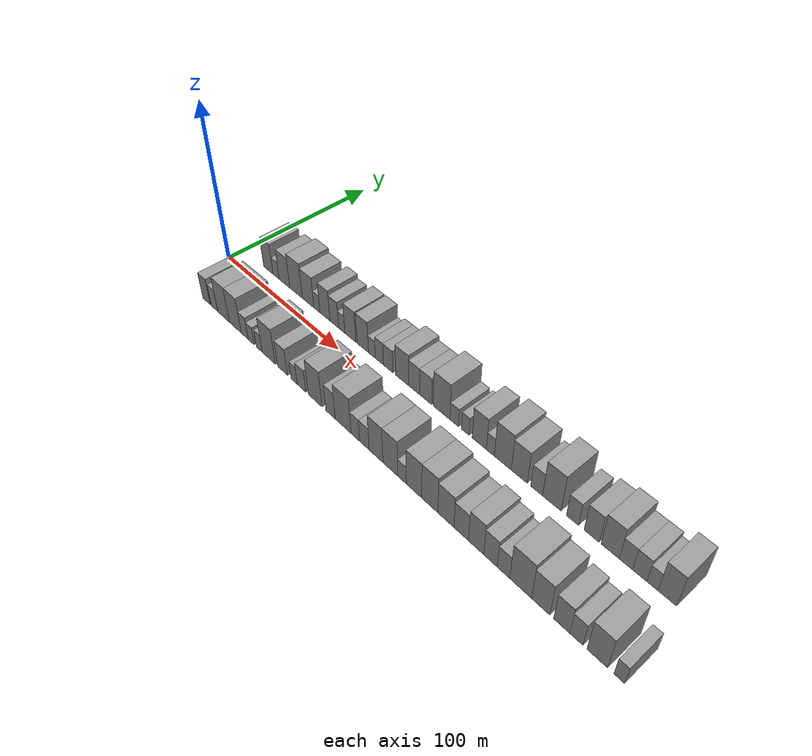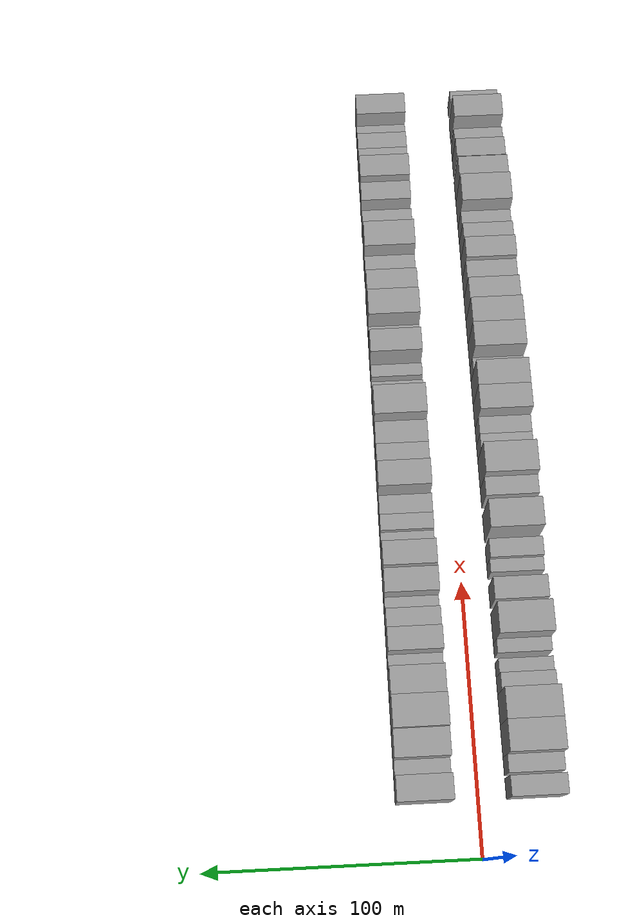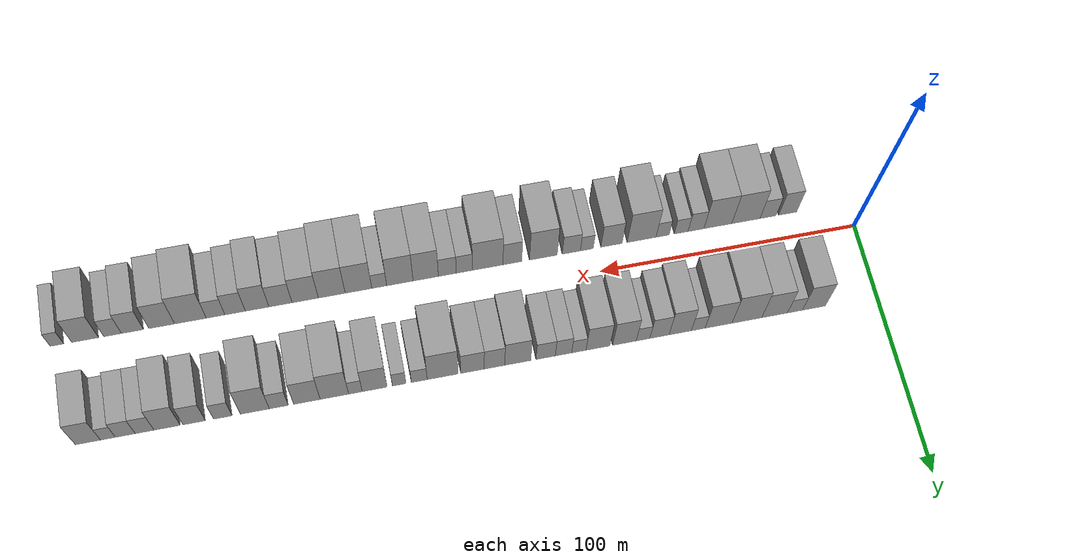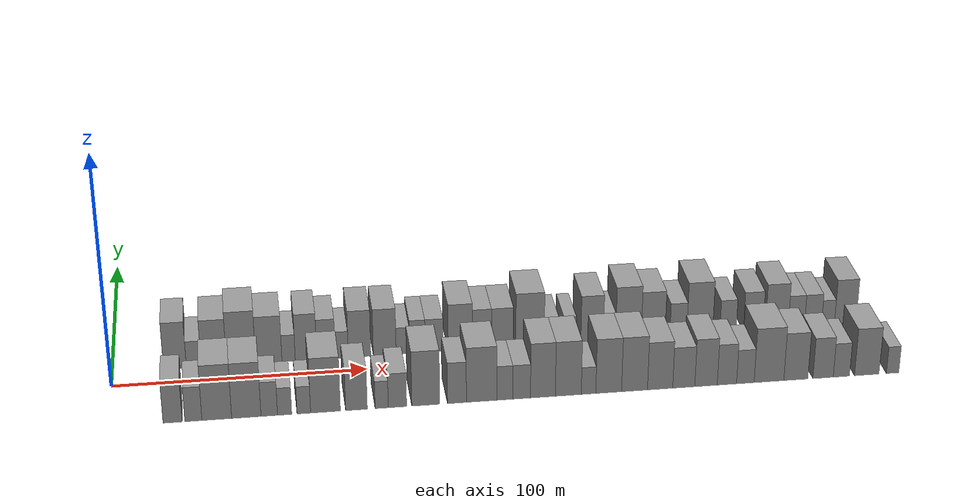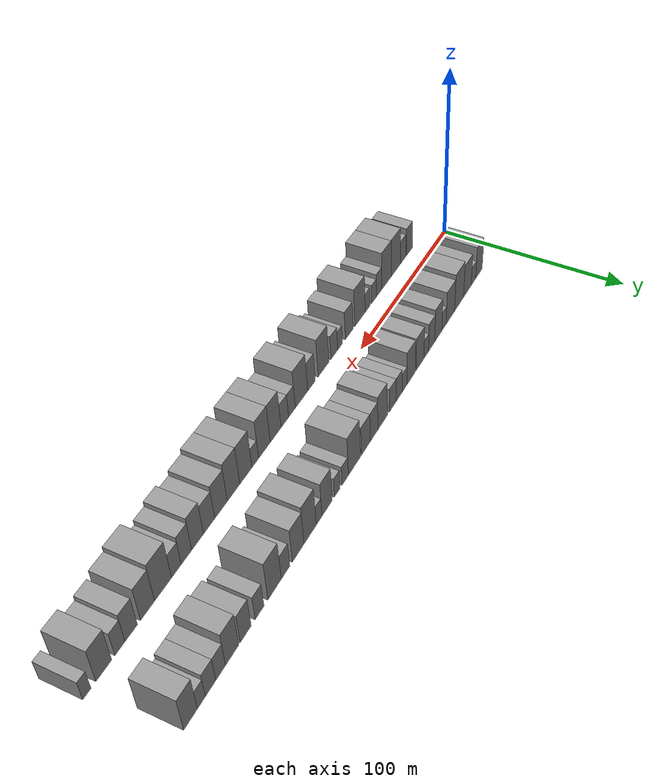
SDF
<sdf version="1.6">
 <world name="default">
  <scene>
   <sky><clouds><speed>12</speed></clouds></sky>
   <ambient>0.4 0.4 0.4 1</ambient>
   <background>0.7 0.7 0.7 1</background>
   <shadows>1</shadows>
  </scene>
  <gravity>0 0 -9.8066</gravity>
  <magnetic_field>6e-06 2.3e-05 -4.2e-05</magnetic_field>
  <physics default="0" name="default_physics" type="ode">
   <ode>
    <solver>
     <type>quick</type>
     <iters>10</iters>
     <sor>1.0</sor>
     <use_dynamic_moi_rescaling>0</use_dynamic_moi_rescaling>
    </solver>
    <constraints>
     <cfm>0</cfm>
     <erp>0.2</erp>
     <contact_max_correcting_vel>100</contact_max_correcting_vel>
     <contact_surface_layer>0.001</contact_surface_layer>
    </constraints>
   </ode>
   <max_step_size>0.004</max_step_size>
   <real_time_factor>1</real_time_factor>
   <real_time_update_rate>250</real_time_update_rate>
  </physics>
  <light name="sun" type="directional">
   <pose>0 0 10 0 0 0</pose>
   <diffuse>0.8 0.8 0.8 1</diffuse>
   <specular>0.2 0.2 0.2 1</specular>
   <attenuation>
    <range>1000</range>
    <constant>0.9</constant>
    <linear>0.01</linear>
    <quadratic>0.001</quadratic>
   </attenuation>
   <direction>-0.5 0.1 -0.9</direction>
  </light>
  <model name="building_1">
   <static>1</static>
   <pose>24.4871 20.0000 0 0.000000 0.000000 1.570796</pose>
   <link name="link">
    <pose>0 0 10.50 0 0 0</pose>
    <collision name="collision"><geometry><box><size>20.0000 8.9742 21.0000</size></box></geometry></collision>
    <visual name="visual">
     <cast_shadows>0</cast_shadows>
     <geometry><box><size>20.0000 8.9742 21.0000</size></box></geometry>
     <material>
      <script>
       <uri>model://grey_wall/materials/scripts</uri>
       <uri>model://grey_wall/materials/textures</uri>
       <name>vrc/grey_wall</name>
      </script>
     </material>
    </visual>
   </link>
  </model>
  <model name="building_2">
   <static>1</static>
   <pose>31.8893 20.0000 0 0.000000 0.000000 1.570796</pose>
   <link name="link">
    <pose>0 0 6.00 0 0 0</pose>
    <collision name="collision"><geometry><box><size>20.0000 5.8302 12.0000</size></box></geometry></collision>
    <visual name="visual">
     <cast_shadows>0</cast_shadows>
     <geometry><box><size>20.0000 5.8302 12.0000</size></box></geometry>
     <material>
      <script>
       <uri>model://grey_wall/materials/scripts</uri>
       <uri>model://grey_wall/materials/textures</uri>
       <name>vrc/grey_wall</name>
      </script>
     </material>
    </visual>
   </link>
  </model>
  <model name="building_3">
   <static>1</static>
   <pose>39.8006 20.0000 0 0.000000 0.000000 1.570796</pose>
   <link name="link">
    <pose>0 0 10.50 0 0 0</pose>
    <collision name="collision"><geometry><box><size>20.0000 9.9923 21.0000</size></box></geometry></collision>
    <visual name="visual">
     <cast_shadows>0</cast_shadows>
     <geometry><box><size>20.0000 9.9923 21.0000</size></box></geometry>
     <material>
      <script>
       <uri>model://grey_wall/materials/scripts</uri>
       <uri>model://grey_wall/materials/textures</uri>
       <name>vrc/grey_wall</name>
      </script>
     </material>
    </visual>
   </link>
  </model>
  <model name="building_4">
   <static>1</static>
   <pose>50.5695 20.0000 0 0.000000 0.000000 1.570796</pose>
   <link name="link">
    <pose>0 0 12.00 0 0 0</pose>
    <collision name="collision"><geometry><box><size>20.0000 11.5457 24.0000</size></box></geometry></collision>
    <visual name="visual">
     <cast_shadows>0</cast_shadows>
     <geometry><box><size>20.0000 11.5457 24.0000</size></box></geometry>
     <material>
      <script>
       <uri>model://grey_wall/materials/scripts</uri>
       <uri>model://grey_wall/materials/textures</uri>
       <name>vrc/grey_wall</name>
      </script>
     </material>
    </visual>
   </link>
  </model>
  <model name="building_5">
   <static>1</static>
   <pose>61.5440 20.0000 0 0.000000 0.000000 1.570796</pose>
   <link name="link">
    <pose>0 0 10.50 0 0 0</pose>
    <collision name="collision"><geometry><box><size>20.0000 10.4033 21.0000</size></box></geometry></collision>
    <visual name="visual">
     <cast_shadows>0</cast_shadows>
     <geometry><box><size>20.0000 10.4033 21.0000</size></box></geometry>
     <material>
      <script>
       <uri>model://grey_wall/materials/scripts</uri>
       <uri>model://grey_wall/materials/textures</uri>
       <name>vrc/grey_wall</name>
      </script>
     </material>
    </visual>
   </link>
  </model>
  <model name="building_6">
   <static>1</static>
   <pose>69.3928 20.0000 0 0.000000 0.000000 1.570796</pose>
   <link name="link">
    <pose>0 0 6.00 0 0 0</pose>
    <collision name="collision"><geometry><box><size>20.0000 5.2942 12.0000</size></box></geometry></collision>
    <visual name="visual">
     <cast_shadows>0</cast_shadows>
     <geometry><box><size>20.0000 5.2942 12.0000</size></box></geometry>
     <material>
      <script>
       <uri>model://grey_wall/materials/scripts</uri>
       <uri>model://grey_wall/materials/textures</uri>
       <name>vrc/grey_wall</name>
      </script>
     </material>
    </visual>
   </link>
  </model>
  <model name="building_7">
   <static>1</static>
   <pose>76.3255 20.0000 0 0.000000 0.000000 1.570796</pose>
   <link name="link">
    <pose>0 0 10.50 0 0 0</pose>
    <collision name="collision"><geometry><box><size>20.0000 8.5712 21.0000</size></box></geometry></collision>
    <visual name="visual">
     <cast_shadows>0</cast_shadows>
     <geometry><box><size>20.0000 8.5712 21.0000</size></box></geometry>
     <material>
      <script>
       <uri>model://grey_wall/materials/scripts</uri>
       <uri>model://grey_wall/materials/textures</uri>
       <name>vrc/grey_wall</name>
      </script>
     </material>
    </visual>
   </link>
  </model>
  <model name="building_8">
   <static>1</static>
   <pose>84.2975 20.0000 0 0.000000 0.000000 1.570796</pose>
   <link name="link">
    <pose>0 0 9.00 0 0 0</pose>
    <collision name="collision"><geometry><box><size>20.0000 7.3727 18.0000</size></box></geometry></collision>
    <visual name="visual">
     <cast_shadows>0</cast_shadows>
     <geometry><box><size>20.0000 7.3727 18.0000</size></box></geometry>
     <material>
      <script>
       <uri>model://grey_wall/materials/scripts</uri>
       <uri>model://grey_wall/materials/textures</uri>
       <name>vrc/grey_wall</name>
      </script>
     </material>
    </visual>
   </link>
  </model>
  <model name="building_9">
   <static>1</static>
   <pose>90.5902 20.0000 0 0.000000 0.000000 1.570796</pose>
   <link name="link">
    <pose>0 0 6.00 0 0 0</pose>
    <collision name="collision"><geometry><box><size>20.0000 5.2127 12.0000</size></box></geometry></collision>
    <visual name="visual">
     <cast_shadows>0</cast_shadows>
     <geometry><box><size>20.0000 5.2127 12.0000</size></box></geometry>
     <material>
      <script>
       <uri>model://grey_wall/materials/scripts</uri>
       <uri>model://grey_wall/materials/textures</uri>
       <name>vrc/grey_wall</name>
      </script>
     </material>
    </visual>
   </link>
  </model>
  <model name="building_10">
   <static>1</static>
   <pose>97.7209 20.0000 0 0.000000 0.000000 1.570796</pose>
   <link name="link">
    <pose>0 0 10.50 0 0 0</pose>
    <collision name="collision"><geometry><box><size>20.0000 9.0488 21.0000</size></box></geometry></collision>
    <visual name="visual">
     <cast_shadows>0</cast_shadows>
     <geometry><box><size>20.0000 9.0488 21.0000</size></box></geometry>
     <material>
      <script>
       <uri>model://grey_wall/materials/scripts</uri>
       <uri>model://grey_wall/materials/textures</uri>
       <name>vrc/grey_wall</name>
      </script>
     </material>
    </visual>
   </link>
  </model>
  <model name="building_11">
   <static>1</static>
   <pose>107.8234 20.0000 0 0.000000 0.000000 1.570796</pose>
   <link name="link">
    <pose>0 0 10.50 0 0 0</pose>
    <collision name="collision"><geometry><box><size>20.0000 9.1562 21.0000</size></box></geometry></collision>
    <visual name="visual">
     <cast_shadows>0</cast_shadows>
     <geometry><box><size>20.0000 9.1562 21.0000</size></box></geometry>
     <material>
      <script>
       <uri>model://grey_wall/materials/scripts</uri>
       <uri>model://grey_wall/materials/textures</uri>
       <name>vrc/grey_wall</name>
      </script>
     </material>
    </visual>
   </link>
  </model>
  <model name="building_12">
   <static>1</static>
   <pose>115.1176 20.0000 0 0.000000 0.000000 1.570796</pose>
   <link name="link">
    <pose>0 0 6.00 0 0 0</pose>
    <collision name="collision"><geometry><box><size>20.0000 5.4322 12.0000</size></box></geometry></collision>
    <visual name="visual">
     <cast_shadows>0</cast_shadows>
     <geometry><box><size>20.0000 5.4322 12.0000</size></box></geometry>
     <material>
      <script>
       <uri>model://grey_wall/materials/scripts</uri>
       <uri>model://grey_wall/materials/textures</uri>
       <name>vrc/grey_wall</name>
      </script>
     </material>
    </visual>
   </link>
  </model>
  <model name="building_13">
   <static>1</static>
   <pose>120.9533 20.0000 0 0.000000 0.000000 1.570796</pose>
   <link name="link">
    <pose>0 0 7.50 0 0 0</pose>
    <collision name="collision"><geometry><box><size>20.0000 6.2392 15.0000</size></box></geometry></collision>
    <visual name="visual">
     <cast_shadows>0</cast_shadows>
     <geometry><box><size>20.0000 6.2392 15.0000</size></box></geometry>
     <material>
      <script>
       <uri>model://grey_wall/materials/scripts</uri>
       <uri>model://grey_wall/materials/textures</uri>
       <name>vrc/grey_wall</name>
      </script>
     </material>
    </visual>
   </link>
  </model>
  <model name="building_14">
   <static>1</static>
   <pose>127.7393 20.0000 0 0.000000 0.000000 1.570796</pose>
   <link name="link">
    <pose>0 0 7.50 0 0 0</pose>
    <collision name="collision"><geometry><box><size>20.0000 7.3328 15.0000</size></box></geometry></collision>
    <visual name="visual">
     <cast_shadows>0</cast_shadows>
     <geometry><box><size>20.0000 7.3328 15.0000</size></box></geometry>
     <material>
      <script>
       <uri>model://grey_wall/materials/scripts</uri>
       <uri>model://grey_wall/materials/textures</uri>
       <name>vrc/grey_wall</name>
      </script>
     </material>
    </visual>
   </link>
  </model>
  <model name="building_15">
   <static>1</static>
   <pose>138.3168 20.0000 0 0.000000 0.000000 1.570796</pose>
   <link name="link">
    <pose>0 0 10.50 0 0 0</pose>
    <collision name="collision"><geometry><box><size>20.0000 9.8221 21.0000</size></box></geometry></collision>
    <visual name="visual">
     <cast_shadows>0</cast_shadows>
     <geometry><box><size>20.0000 9.8221 21.0000</size></box></geometry>
     <material>
      <script>
       <uri>model://grey_wall/materials/scripts</uri>
       <uri>model://grey_wall/materials/textures</uri>
       <name>vrc/grey_wall</name>
      </script>
     </material>
    </visual>
   </link>
  </model>
  <model name="building_16">
   <static>1</static>
   <pose>147.0808 20.0000 0 0.000000 0.000000 1.570796</pose>
   <link name="link">
    <pose>0 0 9.00 0 0 0</pose>
    <collision name="collision"><geometry><box><size>20.0000 7.7059 18.0000</size></box></geometry></collision>
    <visual name="visual">
     <cast_shadows>0</cast_shadows>
     <geometry><box><size>20.0000 7.7059 18.0000</size></box></geometry>
     <material>
      <script>
       <uri>model://grey_wall/materials/scripts</uri>
       <uri>model://grey_wall/materials/textures</uri>
       <name>vrc/grey_wall</name>
      </script>
     </material>
    </visual>
   </link>
  </model>
  <model name="building_17">
   <static>1</static>
   <pose>155.3812 20.0000 0 0.000000 0.000000 1.570796</pose>
   <link name="link">
    <pose>0 0 9.00 0 0 0</pose>
    <collision name="collision"><geometry><box><size>20.0000 8.8951 18.0000</size></box></geometry></collision>
    <visual name="visual">
     <cast_shadows>0</cast_shadows>
     <geometry><box><size>20.0000 8.8951 18.0000</size></box></geometry>
     <material>
      <script>
       <uri>model://grey_wall/materials/scripts</uri>
       <uri>model://grey_wall/materials/textures</uri>
       <name>vrc/grey_wall</name>
      </script>
     </material>
    </visual>
   </link>
  </model>
  <model name="building_18">
   <static>1</static>
   <pose>166.6293 20.0000 0 0.000000 0.000000 1.570796</pose>
   <link name="link">
    <pose>0 0 12.00 0 0 0</pose>
    <collision name="collision"><geometry><box><size>20.0000 11.6011 24.0000</size></box></geometry></collision>
    <visual name="visual">
     <cast_shadows>0</cast_shadows>
     <geometry><box><size>20.0000 11.6011 24.0000</size></box></geometry>
     <material>
      <script>
       <uri>model://grey_wall/materials/scripts</uri>
       <uri>model://grey_wall/materials/textures</uri>
       <name>vrc/grey_wall</name>
      </script>
     </material>
    </visual>
   </link>
  </model>
  <model name="building_19">
   <static>1</static>
   <pose>175.3966 20.0000 0 0.000000 0.000000 1.570796</pose>
   <link name="link">
    <pose>0 0 6.00 0 0 0</pose>
    <collision name="collision"><geometry><box><size>20.0000 5.9334 12.0000</size></box></geometry></collision>
    <visual name="visual">
     <cast_shadows>0</cast_shadows>
     <geometry><box><size>20.0000 5.9334 12.0000</size></box></geometry>
     <material>
      <script>
       <uri>model://grey_wall/materials/scripts</uri>
       <uri>model://grey_wall/materials/textures</uri>
       <name>vrc/grey_wall</name>
      </script>
     </material>
    </visual>
   </link>
  </model>
  <model name="building_20">
   <static>1</static>
   <pose>182.8956 20.0000 0 0.000000 0.000000 1.570796</pose>
   <link name="link">
    <pose>0 0 6.00 0 0 0</pose>
    <collision name="collision"><geometry><box><size>20.0000 5.0646 12.0000</size></box></geometry></collision>
    <visual name="visual">
     <cast_shadows>0</cast_shadows>
     <geometry><box><size>20.0000 5.0646 12.0000</size></box></geometry>
     <material>
      <script>
       <uri>model://grey_wall/materials/scripts</uri>
       <uri>model://grey_wall/materials/textures</uri>
       <name>vrc/grey_wall</name>
      </script>
     </material>
    </visual>
   </link>
  </model>
  <model name="building_21">
   <static>1</static>
   <pose>192.0635 20.0000 0 0.000000 0.000000 1.570796</pose>
   <link name="link">
    <pose>0 0 10.50 0 0 0</pose>
    <collision name="collision"><geometry><box><size>20.0000 9.2713 21.0000</size></box></geometry></collision>
    <visual name="visual">
     <cast_shadows>0</cast_shadows>
     <geometry><box><size>20.0000 9.2713 21.0000</size></box></geometry>
     <material>
      <script>
       <uri>model://grey_wall/materials/scripts</uri>
       <uri>model://grey_wall/materials/textures</uri>
       <name>vrc/grey_wall</name>
      </script>
     </material>
    </visual>
   </link>
  </model>
  <model name="building_22">
   <static>1</static>
   <pose>199.2287 20.0000 0 0.000000 0.000000 1.570796</pose>
   <link name="link">
    <pose>0 0 6.00 0 0 0</pose>
    <collision name="collision"><geometry><box><size>20.0000 5.0590 12.0000</size></box></geometry></collision>
    <visual name="visual">
     <cast_shadows>0</cast_shadows>
     <geometry><box><size>20.0000 5.0590 12.0000</size></box></geometry>
     <material>
      <script>
       <uri>model://grey_wall/materials/scripts</uri>
       <uri>model://grey_wall/materials/textures</uri>
       <name>vrc/grey_wall</name>
      </script>
     </material>
    </visual>
   </link>
  </model>
  <model name="building_23">
   <static>1</static>
   <pose>207.0410 20.0000 0 0.000000 0.000000 1.570796</pose>
   <link name="link">
    <pose>0 0 12.00 0 0 0</pose>
    <collision name="collision"><geometry><box><size>20.0000 10.5656 24.0000</size></box></geometry></collision>
    <visual name="visual">
     <cast_shadows>0</cast_shadows>
     <geometry><box><size>20.0000 10.5656 24.0000</size></box></geometry>
     <material>
      <script>
       <uri>model://grey_wall/materials/scripts</uri>
       <uri>model://grey_wall/materials/textures</uri>
       <name>vrc/grey_wall</name>
      </script>
     </material>
    </visual>
   </link>
  </model>
  <model name="building_24">
   <static>1</static>
   <pose>217.2430 20.0000 0 0.000000 0.000000 1.570796</pose>
   <link name="link">
    <pose>0 0 10.50 0 0 0</pose>
    <collision name="collision"><geometry><box><size>20.0000 9.8382 21.0000</size></box></geometry></collision>
    <visual name="visual">
     <cast_shadows>0</cast_shadows>
     <geometry><box><size>20.0000 9.8382 21.0000</size></box></geometry>
     <material>
      <script>
       <uri>model://grey_wall/materials/scripts</uri>
       <uri>model://grey_wall/materials/textures</uri>
       <name>vrc/grey_wall</name>
      </script>
     </material>
    </visual>
   </link>
  </model>
  <model name="building_25">
   <static>1</static>
   <pose>227.6580 20.0000 0 0.000000 0.000000 1.570796</pose>
   <link name="link">
    <pose>0 0 7.50 0 0 0</pose>
    <collision name="collision"><geometry><box><size>20.0000 6.9918 15.0000</size></box></geometry></collision>
    <visual name="visual">
     <cast_shadows>0</cast_shadows>
     <geometry><box><size>20.0000 6.9918 15.0000</size></box></geometry>
     <material>
      <script>
       <uri>model://grey_wall/materials/scripts</uri>
       <uri>model://grey_wall/materials/textures</uri>
       <name>vrc/grey_wall</name>
      </script>
     </material>
    </visual>
   </link>
  </model>
  <model name="building_26">
   <static>1</static>
   <pose>236.5223 20.0000 0 0.000000 0.000000 1.570796</pose>
   <link name="link">
    <pose>0 0 12.00 0 0 0</pose>
    <collision name="collision"><geometry><box><size>20.0000 10.7368 24.0000</size></box></geometry></collision>
    <visual name="visual">
     <cast_shadows>0</cast_shadows>
     <geometry><box><size>20.0000 10.7368 24.0000</size></box></geometry>
     <material>
      <script>
       <uri>model://grey_wall/materials/scripts</uri>
       <uri>model://grey_wall/materials/textures</uri>
       <name>vrc/grey_wall</name>
      </script>
     </material>
    </visual>
   </link>
  </model>
  <model name="building_27">
   <static>1</static>
   <pose>248.2994 20.0000 0 0.000000 0.000000 1.570796</pose>
   <link name="link">
    <pose>0 0 7.50 0 0 0</pose>
    <collision name="collision"><geometry><box><size>20.0000 6.8175 15.0000</size></box></geometry></collision>
    <visual name="visual">
     <cast_shadows>0</cast_shadows>
     <geometry><box><size>20.0000 6.8175 15.0000</size></box></geometry>
     <material>
      <script>
       <uri>model://grey_wall/materials/scripts</uri>
       <uri>model://grey_wall/materials/textures</uri>
       <name>vrc/grey_wall</name>
      </script>
     </material>
    </visual>
   </link>
  </model>
  <model name="building_28">
   <static>1</static>
   <pose>258.8060 20.0000 0 0.000000 0.000000 1.570796</pose>
   <link name="link">
    <pose>0 0 9.00 0 0 0</pose>
    <collision name="collision"><geometry><box><size>20.0000 8.1957 18.0000</size></box></geometry></collision>
    <visual name="visual">
     <cast_shadows>0</cast_shadows>
     <geometry><box><size>20.0000 8.1957 18.0000</size></box></geometry>
     <material>
      <script>
       <uri>model://grey_wall/materials/scripts</uri>
       <uri>model://grey_wall/materials/textures</uri>
       <name>vrc/grey_wall</name>
      </script>
     </material>
    </visual>
   </link>
  </model>
  <model name="building_29">
   <static>1</static>
   <pose>268.7011 20.0000 0 0.000000 0.000000 1.570796</pose>
   <link name="link">
    <pose>0 0 10.50 0 0 0</pose>
    <collision name="collision"><geometry><box><size>20.0000 9.5946 21.0000</size></box></geometry></collision>
    <visual name="visual">
     <cast_shadows>0</cast_shadows>
     <geometry><box><size>20.0000 9.5946 21.0000</size></box></geometry>
     <material>
      <script>
       <uri>model://grey_wall/materials/scripts</uri>
       <uri>model://grey_wall/materials/textures</uri>
       <name>vrc/grey_wall</name>
      </script>
     </material>
    </visual>
   </link>
  </model>
  <model name="building_30">
   <static>1</static>
   <pose>276.9308 20.0000 0 0.000000 0.000000 1.570796</pose>
   <link name="link">
    <pose>0 0 7.50 0 0 0</pose>
    <collision name="collision"><geometry><box><size>20.0000 6.8648 15.0000</size></box></geometry></collision>
    <visual name="visual">
     <cast_shadows>0</cast_shadows>
     <geometry><box><size>20.0000 6.8648 15.0000</size></box></geometry>
     <material>
      <script>
       <uri>model://grey_wall/materials/scripts</uri>
       <uri>model://grey_wall/materials/textures</uri>
       <name>vrc/grey_wall</name>
      </script>
     </material>
    </visual>
   </link>
  </model>
  <model name="building_31">
   <static>1</static>
   <pose>283.9594 20.0000 0 0.000000 0.000000 1.570796</pose>
   <link name="link">
    <pose>0 0 7.50 0 0 0</pose>
    <collision name="collision"><geometry><box><size>20.0000 7.1924 15.0000</size></box></geometry></collision>
    <visual name="visual">
     <cast_shadows>0</cast_shadows>
     <geometry><box><size>20.0000 7.1924 15.0000</size></box></geometry>
     <material>
      <script>
       <uri>model://grey_wall/materials/scripts</uri>
       <uri>model://grey_wall/materials/textures</uri>
       <name>vrc/grey_wall</name>
      </script>
     </material>
    </visual>
   </link>
  </model>
  <model name="building_32">
   <static>1</static>
   <pose>290.2627 20.0000 0 0.000000 0.000000 1.570796</pose>
   <link name="link">
    <pose>0 0 6.00 0 0 0</pose>
    <collision name="collision"><geometry><box><size>20.0000 5.4142 12.0000</size></box></geometry></collision>
    <visual name="visual">
     <cast_shadows>0</cast_shadows>
     <geometry><box><size>20.0000 5.4142 12.0000</size></box></geometry>
     <material>
      <script>
       <uri>model://grey_wall/materials/scripts</uri>
       <uri>model://grey_wall/materials/textures</uri>
       <name>vrc/grey_wall</name>
      </script>
     </material>
    </visual>
   </link>
  </model>
  <model name="building_33">
   <static>1</static>
   <pose>297.5388 20.0000 0 0.000000 0.000000 1.570796</pose>
   <link name="link">
    <pose>0 0 10.50 0 0 0</pose>
    <collision name="collision"><geometry><box><size>20.0000 9.1381 21.0000</size></box></geometry></collision>
    <visual name="visual">
     <cast_shadows>0</cast_shadows>
     <geometry><box><size>20.0000 9.1381 21.0000</size></box></geometry>
     <material>
      <script>
       <uri>model://grey_wall/materials/scripts</uri>
       <uri>model://grey_wall/materials/textures</uri>
       <name>vrc/grey_wall</name>
      </script>
     </material>
    </visual>
   </link>
  </model>
  <model name="building_34">
   <static>1</static>
   <pose>23.6063 -20.0000 0 0.000000 0.000000 1.570796</pose>
   <link name="link">
    <pose>0 0 9.00 0 0 0</pose>
    <collision name="collision"><geometry><box><size>20.0000 7.2125 18.0000</size></box></geometry></collision>
    <visual name="visual">
     <cast_shadows>0</cast_shadows>
     <geometry><box><size>20.0000 7.2125 18.0000</size></box></geometry>
     <material>
      <script>
       <uri>model://grey_wall/materials/scripts</uri>
       <uri>model://grey_wall/materials/textures</uri>
       <name>vrc/grey_wall</name>
      </script>
     </material>
    </visual>
   </link>
  </model>
  <model name="building_35">
   <static>1</static>
   <pose>31.4311 -20.0000 0 0.000000 0.000000 1.570796</pose>
   <link name="link">
    <pose>0 0 7.50 0 0 0</pose>
    <collision name="collision"><geometry><box><size>20.0000 6.4371 15.0000</size></box></geometry></collision>
    <visual name="visual">
     <cast_shadows>0</cast_shadows>
     <geometry><box><size>20.0000 6.4371 15.0000</size></box></geometry>
     <material>
      <script>
       <uri>model://grey_wall/materials/scripts</uri>
       <uri>model://grey_wall/materials/textures</uri>
       <name>vrc/grey_wall</name>
      </script>
     </material>
    </visual>
   </link>
  </model>
  <model name="building_36">
   <static>1</static>
   <pose>40.2612 -20.0000 0 0.000000 0.000000 1.570796</pose>
   <link name="link">
    <pose>0 0 12.00 0 0 0</pose>
    <collision name="collision"><geometry><box><size>20.0000 11.2232 24.0000</size></box></geometry></collision>
    <visual name="visual">
     <cast_shadows>0</cast_shadows>
     <geometry><box><size>20.0000 11.2232 24.0000</size></box></geometry>
     <material>
      <script>
       <uri>model://grey_wall/materials/scripts</uri>
       <uri>model://grey_wall/materials/textures</uri>
       <name>vrc/grey_wall</name>
      </script>
     </material>
    </visual>
   </link>
  </model>
  <model name="building_37">
   <static>1</static>
   <pose>51.4361 -20.0000 0 0.000000 0.000000 1.570796</pose>
   <link name="link">
    <pose>0 0 12.00 0 0 0</pose>
    <collision name="collision"><geometry><box><size>20.0000 11.1266 24.0000</size></box></geometry></collision>
    <visual name="visual">
     <cast_shadows>0</cast_shadows>
     <geometry><box><size>20.0000 11.1266 24.0000</size></box></geometry>
     <material>
      <script>
       <uri>model://grey_wall/materials/scripts</uri>
       <uri>model://grey_wall/materials/textures</uri>
       <name>vrc/grey_wall</name>
      </script>
     </material>
    </visual>
   </link>
  </model>
  <model name="building_38">
   <static>1</static>
   <pose>60.1396 -20.0000 0 0.000000 0.000000 1.570796</pose>
   <link name="link">
    <pose>0 0 7.50 0 0 0</pose>
    <collision name="collision"><geometry><box><size>20.0000 6.2805 15.0000</size></box></geometry></collision>
    <visual name="visual">
     <cast_shadows>0</cast_shadows>
     <geometry><box><size>20.0000 6.2805 15.0000</size></box></geometry>
     <material>
      <script>
       <uri>model://grey_wall/materials/scripts</uri>
       <uri>model://grey_wall/materials/textures</uri>
       <name>vrc/grey_wall</name>
      </script>
     </material>
    </visual>
   </link>
  </model>
  <model name="building_39">
   <static>1</static>
   <pose>65.9984 -20.0000 0 0.000000 0.000000 1.570796</pose>
   <link name="link">
    <pose>0 0 6.00 0 0 0</pose>
    <collision name="collision"><geometry><box><size>20.0000 5.4371 12.0000</size></box></geometry></collision>
    <visual name="visual">
     <cast_shadows>0</cast_shadows>
     <geometry><box><size>20.0000 5.4371 12.0000</size></box></geometry>
     <material>
      <script>
       <uri>model://grey_wall/materials/scripts</uri>
       <uri>model://grey_wall/materials/textures</uri>
       <name>vrc/grey_wall</name>
      </script>
     </material>
    </visual>
   </link>
  </model>
  <model name="building_40">
   <static>1</static>
   <pose>73.3078 -20.0000 0 0.000000 0.000000 1.570796</pose>
   <link name="link">
    <pose>0 0 6.00 0 0 0</pose>
    <collision name="collision"><geometry><box><size>20.0000 5.1817 12.0000</size></box></geometry></collision>
    <visual name="visual">
     <cast_shadows>0</cast_shadows>
     <geometry><box><size>20.0000 5.1817 12.0000</size></box></geometry>
     <material>
      <script>
       <uri>model://grey_wall/materials/scripts</uri>
       <uri>model://grey_wall/materials/textures</uri>
       <name>vrc/grey_wall</name>
      </script>
     </material>
    </visual>
   </link>
  </model>
  <model name="building_41">
   <static>1</static>
   <pose>81.6029 -20.0000 0 0.000000 0.000000 1.570796</pose>
   <link name="link">
    <pose>0 0 12.00 0 0 0</pose>
    <collision name="collision"><geometry><box><size>20.0000 11.4087 24.0000</size></box></geometry></collision>
    <visual name="visual">
     <cast_shadows>0</cast_shadows>
     <geometry><box><size>20.0000 11.4087 24.0000</size></box></geometry>
     <material>
      <script>
       <uri>model://grey_wall/materials/scripts</uri>
       <uri>model://grey_wall/materials/textures</uri>
       <name>vrc/grey_wall</name>
      </script>
     </material>
    </visual>
   </link>
  </model>
  <model name="building_42">
   <static>1</static>
   <pose>93.4656 -20.0000 0 0.000000 0.000000 1.570796</pose>
   <link name="link">
    <pose>0 0 9.00 0 0 0</pose>
    <collision name="collision"><geometry><box><size>20.0000 8.3166 18.0000</size></box></geometry></collision>
    <visual name="visual">
     <cast_shadows>0</cast_shadows>
     <geometry><box><size>20.0000 8.3166 18.0000</size></box></geometry>
     <material>
      <script>
       <uri>model://grey_wall/materials/scripts</uri>
       <uri>model://grey_wall/materials/textures</uri>
       <name>vrc/grey_wall</name>
      </script>
     </material>
    </visual>
   </link>
  </model>
  <model name="building_43">
   <static>1</static>
   <pose>103.1456 -20.0000 0 0.000000 0.000000 1.570796</pose>
   <link name="link">
    <pose>0 0 6.00 0 0 0</pose>
    <collision name="collision"><geometry><box><size>20.0000 5.0434 12.0000</size></box></geometry></collision>
    <visual name="visual">
     <cast_shadows>0</cast_shadows>
     <geometry><box><size>20.0000 5.0434 12.0000</size></box></geometry>
     <material>
      <script>
       <uri>model://grey_wall/materials/scripts</uri>
       <uri>model://grey_wall/materials/textures</uri>
       <name>vrc/grey_wall</name>
      </script>
     </material>
    </visual>
   </link>
  </model>
  <model name="building_44">
   <static>1</static>
   <pose>109.2121 -20.0000 0 0.000000 0.000000 1.570796</pose>
   <link name="link">
    <pose>0 0 7.50 0 0 0</pose>
    <collision name="collision"><geometry><box><size>20.0000 7.0896 15.0000</size></box></geometry></collision>
    <visual name="visual">
     <cast_shadows>0</cast_shadows>
     <geometry><box><size>20.0000 7.0896 15.0000</size></box></geometry>
     <material>
      <script>
       <uri>model://grey_wall/materials/scripts</uri>
       <uri>model://grey_wall/materials/textures</uri>
       <name>vrc/grey_wall</name>
      </script>
     </material>
    </visual>
   </link>
  </model>
  <model name="building_45">
   <static>1</static>
   <pose>120.1643 -20.0000 0 0.000000 0.000000 1.570796</pose>
   <link name="link">
    <pose>0 0 12.00 0 0 0</pose>
    <collision name="collision"><geometry><box><size>20.0000 10.8149 24.0000</size></box></geometry></collision>
    <visual name="visual">
     <cast_shadows>0</cast_shadows>
     <geometry><box><size>20.0000 10.8149 24.0000</size></box></geometry>
     <material>
      <script>
       <uri>model://grey_wall/materials/scripts</uri>
       <uri>model://grey_wall/materials/textures</uri>
       <name>vrc/grey_wall</name>
      </script>
     </material>
    </visual>
   </link>
  </model>
  <model name="building_46">
   <static>1</static>
   <pose>132.2204 -20.0000 0 0.000000 0.000000 1.570796</pose>
   <link name="link">
    <pose>0 0 9.00 0 0 0</pose>
    <collision name="collision"><geometry><box><size>20.0000 7.2972 18.0000</size></box></geometry></collision>
    <visual name="visual">
     <cast_shadows>0</cast_shadows>
     <geometry><box><size>20.0000 7.2972 18.0000</size></box></geometry>
     <material>
      <script>
       <uri>model://grey_wall/materials/scripts</uri>
       <uri>model://grey_wall/materials/textures</uri>
       <name>vrc/grey_wall</name>
      </script>
     </material>
    </visual>
   </link>
  </model>
  <model name="building_47">
   <static>1</static>
   <pose>141.7957 -20.0000 0 0.000000 0.000000 1.570796</pose>
   <link name="link">
    <pose>0 0 12.00 0 0 0</pose>
    <collision name="collision"><geometry><box><size>20.0000 11.8534 24.0000</size></box></geometry></collision>
    <visual name="visual">
     <cast_shadows>0</cast_shadows>
     <geometry><box><size>20.0000 11.8534 24.0000</size></box></geometry>
     <material>
      <script>
       <uri>model://grey_wall/materials/scripts</uri>
       <uri>model://grey_wall/materials/textures</uri>
       <name>vrc/grey_wall</name>
      </script>
     </material>
    </visual>
   </link>
  </model>
  <model name="building_48">
   <static>1</static>
   <pose>150.8352 -20.0000 0 0.000000 0.000000 1.570796</pose>
   <link name="link">
    <pose>0 0 7.50 0 0 0</pose>
    <collision name="collision"><geometry><box><size>20.0000 6.2257 15.0000</size></box></geometry></collision>
    <visual name="visual">
     <cast_shadows>0</cast_shadows>
     <geometry><box><size>20.0000 6.2257 15.0000</size></box></geometry>
     <material>
      <script>
       <uri>model://grey_wall/materials/scripts</uri>
       <uri>model://grey_wall/materials/textures</uri>
       <name>vrc/grey_wall</name>
      </script>
     </material>
    </visual>
   </link>
  </model>
  <model name="building_49">
   <static>1</static>
   <pose>157.3976 -20.0000 0 0.000000 0.000000 1.570796</pose>
   <link name="link">
    <pose>0 0 7.50 0 0 0</pose>
    <collision name="collision"><geometry><box><size>20.0000 6.8991 15.0000</size></box></geometry></collision>
    <visual name="visual">
     <cast_shadows>0</cast_shadows>
     <geometry><box><size>20.0000 6.8991 15.0000</size></box></geometry>
     <material>
      <script>
       <uri>model://grey_wall/materials/scripts</uri>
       <uri>model://grey_wall/materials/textures</uri>
       <name>vrc/grey_wall</name>
      </script>
     </material>
    </visual>
   </link>
  </model>
  <model name="building_50">
   <static>1</static>
   <pose>165.7211 -20.0000 0 0.000000 0.000000 1.570796</pose>
   <link name="link">
    <pose>0 0 12.00 0 0 0</pose>
    <collision name="collision"><geometry><box><size>20.0000 9.7480 24.0000</size></box></geometry></collision>
    <visual name="visual">
     <cast_shadows>0</cast_shadows>
     <geometry><box><size>20.0000 9.7480 24.0000</size></box></geometry>
     <material>
      <script>
       <uri>model://grey_wall/materials/scripts</uri>
       <uri>model://grey_wall/materials/textures</uri>
       <name>vrc/grey_wall</name>
      </script>
     </material>
    </visual>
   </link>
  </model>
  <model name="building_51">
   <static>1</static>
   <pose>175.6865 -20.0000 0 0.000000 0.000000 1.570796</pose>
   <link name="link">
    <pose>0 0 12.00 0 0 0</pose>
    <collision name="collision"><geometry><box><size>20.0000 10.1828 24.0000</size></box></geometry></collision>
    <visual name="visual">
     <cast_shadows>0</cast_shadows>
     <geometry><box><size>20.0000 10.1828 24.0000</size></box></geometry>
     <material>
      <script>
       <uri>model://grey_wall/materials/scripts</uri>
       <uri>model://grey_wall/materials/textures</uri>
       <name>vrc/grey_wall</name>
      </script>
     </material>
    </visual>
   </link>
  </model>
  <model name="building_52">
   <static>1</static>
   <pose>183.6340 -20.0000 0 0.000000 0.000000 1.570796</pose>
   <link name="link">
    <pose>0 0 6.00 0 0 0</pose>
    <collision name="collision"><geometry><box><size>20.0000 5.7124 12.0000</size></box></geometry></collision>
    <visual name="visual">
     <cast_shadows>0</cast_shadows>
     <geometry><box><size>20.0000 5.7124 12.0000</size></box></geometry>
     <material>
      <script>
       <uri>model://grey_wall/materials/scripts</uri>
       <uri>model://grey_wall/materials/textures</uri>
       <name>vrc/grey_wall</name>
      </script>
     </material>
    </visual>
   </link>
  </model>
  <model name="building_53">
   <static>1</static>
   <pose>191.5759 -20.0000 0 0.000000 0.000000 1.570796</pose>
   <link name="link">
    <pose>0 0 12.00 0 0 0</pose>
    <collision name="collision"><geometry><box><size>20.0000 10.1714 24.0000</size></box></geometry></collision>
    <visual name="visual">
     <cast_shadows>0</cast_shadows>
     <geometry><box><size>20.0000 10.1714 24.0000</size></box></geometry>
     <material>
      <script>
       <uri>model://grey_wall/materials/scripts</uri>
       <uri>model://grey_wall/materials/textures</uri>
       <name>vrc/grey_wall</name>
      </script>
     </material>
    </visual>
   </link>
  </model>
  <model name="building_54">
   <static>1</static>
   <pose>201.7952 -20.0000 0 0.000000 0.000000 1.570796</pose>
   <link name="link">
    <pose>0 0 12.00 0 0 0</pose>
    <collision name="collision"><geometry><box><size>20.0000 10.2671 24.0000</size></box></geometry></collision>
    <visual name="visual">
     <cast_shadows>0</cast_shadows>
     <geometry><box><size>20.0000 10.2671 24.0000</size></box></geometry>
     <material>
      <script>
       <uri>model://grey_wall/materials/scripts</uri>
       <uri>model://grey_wall/materials/textures</uri>
       <name>vrc/grey_wall</name>
      </script>
     </material>
    </visual>
   </link>
  </model>
  <model name="building_55">
   <static>1</static>
   <pose>211.9346 -20.0000 0 0.000000 0.000000 1.570796</pose>
   <link name="link">
    <pose>0 0 10.50 0 0 0</pose>
    <collision name="collision"><geometry><box><size>20.0000 10.0118 21.0000</size></box></geometry></collision>
    <visual name="visual">
     <cast_shadows>0</cast_shadows>
     <geometry><box><size>20.0000 10.0118 21.0000</size></box></geometry>
     <material>
      <script>
       <uri>model://grey_wall/materials/scripts</uri>
       <uri>model://grey_wall/materials/textures</uri>
       <name>vrc/grey_wall</name>
      </script>
     </material>
    </visual>
   </link>
  </model>
  <model name="building_56">
   <static>1</static>
   <pose>221.3277 -20.0000 0 0.000000 0.000000 1.570796</pose>
   <link name="link">
    <pose>0 0 9.00 0 0 0</pose>
    <collision name="collision"><geometry><box><size>20.0000 8.7744 18.0000</size></box></geometry></collision>
    <visual name="visual">
     <cast_shadows>0</cast_shadows>
     <geometry><box><size>20.0000 8.7744 18.0000</size></box></geometry>
     <material>
      <script>
       <uri>model://grey_wall/materials/scripts</uri>
       <uri>model://grey_wall/materials/textures</uri>
       <name>vrc/grey_wall</name>
      </script>
     </material>
    </visual>
   </link>
  </model>
  <model name="building_57">
   <static>1</static>
   <pose>230.1869 -20.0000 0 0.000000 0.000000 1.570796</pose>
   <link name="link">
    <pose>0 0 10.50 0 0 0</pose>
    <collision name="collision"><geometry><box><size>20.0000 8.9441 21.0000</size></box></geometry></collision>
    <visual name="visual">
     <cast_shadows>0</cast_shadows>
     <geometry><box><size>20.0000 8.9441 21.0000</size></box></geometry>
     <material>
      <script>
       <uri>model://grey_wall/materials/scripts</uri>
       <uri>model://grey_wall/materials/textures</uri>
       <name>vrc/grey_wall</name>
      </script>
     </material>
    </visual>
   </link>
  </model>
  <model name="building_58">
   <static>1</static>
   <pose>238.5222 -20.0000 0 0.000000 0.000000 1.570796</pose>
   <link name="link">
    <pose>0 0 9.00 0 0 0</pose>
    <collision name="collision"><geometry><box><size>20.0000 7.7264 18.0000</size></box></geometry></collision>
    <visual name="visual">
     <cast_shadows>0</cast_shadows>
     <geometry><box><size>20.0000 7.7264 18.0000</size></box></geometry>
     <material>
      <script>
       <uri>model://grey_wall/materials/scripts</uri>
       <uri>model://grey_wall/materials/textures</uri>
       <name>vrc/grey_wall</name>
      </script>
     </material>
    </visual>
   </link>
  </model>
  <model name="building_59">
   <static>1</static>
   <pose>245.8957 -20.0000 0 0.000000 0.000000 1.570796</pose>
   <link name="link">
    <pose>0 0 7.50 0 0 0</pose>
    <collision name="collision"><geometry><box><size>20.0000 7.0207 15.0000</size></box></geometry></collision>
    <visual name="visual">
     <cast_shadows>0</cast_shadows>
     <geometry><box><size>20.0000 7.0207 15.0000</size></box></geometry>
     <material>
      <script>
       <uri>model://grey_wall/materials/scripts</uri>
       <uri>model://grey_wall/materials/textures</uri>
       <name>vrc/grey_wall</name>
      </script>
     </material>
    </visual>
   </link>
  </model>
  <model name="building_60">
   <static>1</static>
   <pose>255.3797 -20.0000 0 0.000000 0.000000 1.570796</pose>
   <link name="link">
    <pose>0 0 12.00 0 0 0</pose>
    <collision name="collision"><geometry><box><size>20.0000 11.9472 24.0000</size></box></geometry></collision>
    <visual name="visual">
     <cast_shadows>0</cast_shadows>
     <geometry><box><size>20.0000 11.9472 24.0000</size></box></geometry>
     <material>
      <script>
       <uri>model://grey_wall/materials/scripts</uri>
       <uri>model://grey_wall/materials/textures</uri>
       <name>vrc/grey_wall</name>
      </script>
     </material>
    </visual>
   </link>
  </model>
  <model name="building_61">
   <static>1</static>
   <pose>266.2011 -20.0000 0 0.000000 0.000000 1.570796</pose>
   <link name="link">
    <pose>0 0 10.50 0 0 0</pose>
    <collision name="collision"><geometry><box><size>20.0000 9.6957 21.0000</size></box></geometry></collision>
    <visual name="visual">
     <cast_shadows>0</cast_shadows>
     <geometry><box><size>20.0000 9.6957 21.0000</size></box></geometry>
     <material>
      <script>
       <uri>model://grey_wall/materials/scripts</uri>
       <uri>model://grey_wall/materials/textures</uri>
       <name>vrc/grey_wall</name>
      </script>
     </material>
    </visual>
   </link>
  </model>
  <model name="building_62">
   <static>1</static>
   <pose>277.1738 -20.0000 0 0.000000 0.000000 1.570796</pose>
   <link name="link">
    <pose>0 0 9.00 0 0 0</pose>
    <collision name="collision"><geometry><box><size>20.0000 8.2496 18.0000</size></box></geometry></collision>
    <visual name="visual">
     <cast_shadows>0</cast_shadows>
     <geometry><box><size>20.0000 8.2496 18.0000</size></box></geometry>
     <material>
      <script>
       <uri>model://grey_wall/materials/scripts</uri>
       <uri>model://grey_wall/materials/textures</uri>
       <name>vrc/grey_wall</name>
      </script>
     </material>
    </visual>
   </link>
  </model>
  <model name="building_63">
   <static>1</static>
   <pose>284.5901 -20.0000 0 0.000000 0.000000 1.570796</pose>
   <link name="link">
    <pose>0 0 7.50 0 0 0</pose>
    <collision name="collision"><geometry><box><size>20.0000 6.5830 15.0000</size></box></geometry></collision>
    <visual name="visual">
     <cast_shadows>0</cast_shadows>
     <geometry><box><size>20.0000 6.5830 15.0000</size></box></geometry>
     <material>
      <script>
       <uri>model://grey_wall/materials/scripts</uri>
       <uri>model://grey_wall/materials/textures</uri>
       <name>vrc/grey_wall</name>
      </script>
     </material>
    </visual>
   </link>
  </model>
  <model name="building_64">
   <static>1</static>
   <pose>294.8608 -20.0000 0 0.000000 0.000000 1.570796</pose>
   <link name="link">
    <pose>0 0 10.50 0 0 0</pose>
    <collision name="collision"><geometry><box><size>20.0000 9.9583 21.0000</size></box></geometry></collision>
    <visual name="visual">
     <cast_shadows>0</cast_shadows>
     <geometry><box><size>20.0000 9.9583 21.0000</size></box></geometry>
     <material>
      <script>
       <uri>model://grey_wall/materials/scripts</uri>
       <uri>model://grey_wall/materials/textures</uri>
       <name>vrc/grey_wall</name>
      </script>
     </material>
    </visual>
   </link>
  </model>
  <model name="building_65">
   <static>1</static>
   <pose>305.3638 -20.0000 0 0.000000 0.000000 1.570796</pose>
   <link name="link">
    <pose>0 0 6.00 0 0 0</pose>
    <collision name="collision"><geometry><box><size>20.0000 5.0479 12.0000</size></box></geometry></collision>
    <visual name="visual">
     <cast_shadows>0</cast_shadows>
     <geometry><box><size>20.0000 5.0479 12.0000</size></box></geometry>
     <material>
      <script>
       <uri>model://grey_wall/materials/scripts</uri>
       <uri>model://grey_wall/materials/textures</uri>
       <name>vrc/grey_wall</name>
      </script>
     </material>
    </visual>
   </link>
  </model>
 </world>
</sdf>
